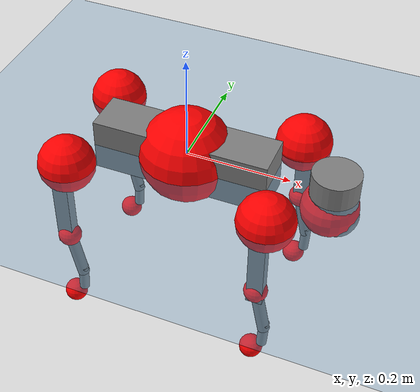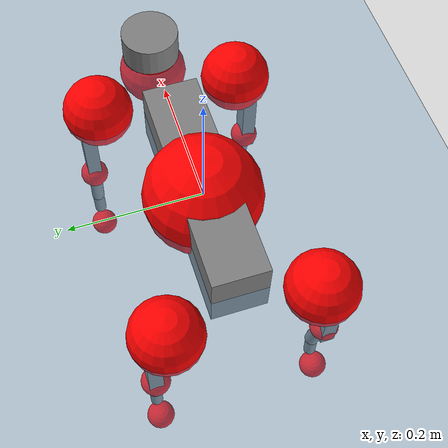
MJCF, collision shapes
<mujoco model="go2">
  <compiler angle="radian" assetdir="assets" balanceinertia="true" inertiafromgeom="false"/>

  <option timestep="0.005" density="1.2" viscosity="2e-05"/>

  <size nkey="1"/>

  <visual>
    <quality shadowsize="8192"/>
    <map shadowclip="0.5"/>
  </visual>

  <default>
    <default class="/">
      <geom contype="0" conaffinity="0" group="1" solref="-1000 -80"/>
      <site size="0.01 0.005 0.005" group="5"/>
      <general forcelimited="true" biastype="affine" gainprm="20" biasprm="0 -20 -0.5"/>
      <default class="go2">
        <joint armature="0.01" damping="0.01" frictionloss="0.2"/>
        <geom condim="1" margin="0.001"/>
        <default class="visual">
          <geom type="mesh" group="2"/>
        </default>
        <default class="collision">
          <geom group="3"/>
          <default class="foot">
            <geom size="0.022 0 0" condim="6" priority="1" friction="0.8 0.02 0.01" solimp="0.015 1 0.022"/>
          </default>
        </default>
        <default class="reward_collision_sphere">
          <geom group="5" rgba="1 0 0 1"/>
        </default>
      </default>
    </default>
  </default>

  <asset>
    <texture type="skybox" colorspace="auto" name="//unnamed_texture_0" builtin="gradient" rgb1="0.95 0.95 0.95" rgb2="0.95 0.95 0.95" width="100" height="600"/>
    <texture type="2d" colorspace="auto" name="texplane" builtin="checker" rgb1="0.345 0.575 0.748" rgb2="0.345 0.575 0.748" markrgb="1 1 1" width="512" height="512"/>
    <material name="MatPlane" class="/" texture="texplane" texuniform="true" texrepeat="2 2" specular="0.9"/>
    <material name="metal" class="/" rgba="0.9 0.95 0.95 1"/>
    <material name="black" class="/" rgba="0 0 0 1"/>
    <material name="white" class="/"/>
    <material name="gray" class="/" rgba="0.671705 0.692426 0.77427 1"/>
    <mesh name="base_0" class="/" file="base_0.obj"/>
    <mesh name="base_1" class="/" file="base_1.obj"/>
    <mesh name="base_2" class="/" file="base_2.obj"/>
    <mesh name="base_3" class="/" file="base_3.obj"/>
    <mesh name="base_4" class="/" file="base_4.obj"/>
    <mesh name="hip_0" class="/" file="hip_0.obj"/>
    <mesh name="hip_1" class="/" file="hip_1.obj"/>
    <mesh name="thigh_0" class="/" file="thigh_0.obj"/>
    <mesh name="thigh_1" class="/" file="thigh_1.obj"/>
    <mesh name="thigh_mirror_0" class="/" file="thigh_mirror_0.obj"/>
    <mesh name="thigh_mirror_1" class="/" file="thigh_mirror_1.obj"/>
    <mesh name="calf_0" class="/" file="calf_0.obj"/>
    <mesh name="calf_1" class="/" file="calf_1.obj"/>
    <mesh name="calf_mirror_0" class="/" file="calf_mirror_0.obj"/>
    <mesh name="calf_mirror_1" class="/" file="calf_mirror_1.obj"/>
    <mesh name="foot" class="/" file="foot.obj"/>
  </asset>

  <worldbody>
    <geom name="floor" class="/" size="100 100 0.125" type="plane" group="0" material="MatPlane"/>
    <light name="toplight_shadow" class="/" pos="0 0 5" dir="0.0990148 0.0990148 -0.990148" type="directional" ambient="0.04 0.04 0.04" diffuse="0.55 0.55 0.55" specular="0.12 0.12 0.12"/>
    <light name="toplight_fill" class="/" pos="0 0 5" dir="0.0990148 0.0990148 -0.990148" type="directional" castshadow="false" ambient="0.04 0.04 0.04" diffuse="0.3 0.3 0.3" specular="0.08 0.08 0.08"/>
    <body name="trunk" childclass="go2" pos="2.35689e-05 -2.20723e-05 -0.00110552" quat="1 -0.000153178 -0.000191524 -0.000280025">
      <inertial pos="0.0208322 -0.0017528 -0.00367119" quat="-0.000975589 0.713839 -0.00181455 0.700307" mass="4.97421" diaginertia="0.0963912 0.0752682 0.00577973"/>
      <joint name="//unnamed_joint_0" type="free" armature="0" damping="0" frictionloss="0"/>
      <geom name="//unnamed_geom_1" class="visual" material="black" mesh="base_0"/>
      <geom name="//unnamed_geom_2" class="visual" material="black" mesh="base_1"/>
      <geom name="//unnamed_geom_3" class="visual" material="black" mesh="base_2"/>
      <geom name="//unnamed_geom_4" class="visual" material="white" mesh="base_3"/>
      <geom name="//unnamed_geom_5" class="visual" material="gray" mesh="base_4"/>
      <geom name="trunk_1" class="collision" size="0.168879 0.0419728 0.0511753" type="box"/>
      <geom name="trunk_2" class="collision" size="0.0448907 0.0404016" pos="0.281229 0 0.00752956" type="cylinder"/>
      <geom name="trunk_3" class="collision" size="0.0421972" pos="0.289123 0 -0.0451774"/>
      <geom name="//unnamed_geom_9" class="reward_collision_sphere" size="0.0897813"/>
      <geom name="//unnamed_geom_10" class="reward_collision_sphere" size="0.0538688" pos="0.276295 0 -0.033883"/>
      <site name="imu" pos="-0.0117977 -0.0108777 0.0453194" size="0.00897813"/>
      <camera name="track" pos="0 -1.90743 0" quat="0.707107 0.707107 0 0" mode="trackcom"/>
      <camera name="ego_camera" pos="0.307872 0 0.033883" quat="-0.5 -0.5 0.5 0.5"/>
      <body name="FL_hip" pos="0.189834 0.0427123 0.0049689" quat="0.999999 0.000112866 0.000959093 -0.000265694">
        <inertial pos="-0.00485572 0.00270701 -0.00244469" quat="0.491454 0.502215 0.507721 0.498469" mass="0.460276" diaginertia="0.000797642 0.00044222 0.000115314"/>
        <joint name="FL_hip_joint" pos="0 0 0" axis="0.999982 -0.00457543 -0.00394858" stiffness="0.00148561" range="-1.10119 1.05893" armature="0.00984811" damping="0.0175505" frictionloss="0.180227"/>
        <geom name="//unnamed_geom_11" class="visual" material="metal" mesh="hip_0"/>
        <geom name="//unnamed_geom_12" class="visual" material="gray" mesh="hip_1"/>
        <geom name="//unnamed_geom_13" class="collision" size="0.0412994 0.0179563" pos="0 0.0762972 0" quat="0.707107 0.707107 0 0" type="cylinder"/>
        <geom name="//unnamed_geom_14" class="reward_collision_sphere" size="0.0538688" pos="0 0.06676 0"/>
        <body name="FL_thigh" pos="0.000724059 0.0901018 0.00301817" quat="1 3.23903e-05 -2.64312e-05 -1.82656e-05">
          <inertial pos="-0.00279537 -0.0207435 -0.0267896" quat="0.828962 0.0872032 -0.0191231 0.552133" mass="0.866807" diaginertia="0.00551595 0.00468058 0.000220944"/>
          <joint name="FL_thigh_joint" pos="0 0 0" axis="-0.00901342 0.999935 0.00705319" range="-1.60368 3.54498" armature="0.00998388" damping="0" frictionloss="0.184315"/>
          <geom name="//unnamed_geom_15" class="visual" material="metal" mesh="thigh_0"/>
          <geom name="//unnamed_geom_16" class="visual" material="gray" mesh="thigh_1"/>
          <geom name="//unnamed_geom_17" class="collision" size="0.0956171 0.0109982 0.0152628" pos="0 0 -0.0801898" quat="0.707107 0 0.707107 0" type="box"/>
          <body name="FL_calf" pos="-0.00332286 0.00101108 -0.15975" quat="1 0.00052559 -2.09113e-05 0.000450925">
            <inertial pos="0.00641369 -0.000536083 -0.105542" quat="0.710735 0.00131851 -0.0043008 0.703445" mass="0.167066" diaginertia="0.00139081 0.00117888 1.27289e-05"/>
            <joint name="FL_calf_joint" pos="0 0 0" axis="3.64027e-05 1 -6.53297e-06" stiffness="0.00363663" range="-2.70848 -0.86949" armature="0.00787261" damping="0.00656959" frictionloss="0.169861"/>
            <geom name="//unnamed_geom_18" class="visual" material="gray" mesh="calf_0"/>
            <geom name="//unnamed_geom_19" class="visual" material="black" mesh="calf_1"/>
            <geom name="FL_calf0" class="collision" size="0.0107738 0.0538688" pos="0.00789415 0 -0.0451774" quat="0.994493 0 -0.104807 0" type="cylinder"/>
            <geom name="//unnamed_geom_21" class="collision" size="0.00987594 0.0291789" pos="0.0197354 0 -0.111437" quat="0.999688 0 0.0249974 0" type="cylinder"/>
            <geom name="//unnamed_geom_22" class="visual" pos="0 0 -0.16038" quat="1 0 0 0" material="black" mesh="foot"/>
            <geom name="FL_foot" class="foot" size="0.0171984" pos="-0.00197354 0 -0.16038"/>
            <geom name="//unnamed_geom_24" class="reward_collision_sphere" size="0.0224453"/>
            <geom name="//unnamed_geom_25" class="reward_collision_sphere" size="0.0224453" pos="-0.00197354 0 -0.16038"/>
            <site name="FL_foot" class="foot" pos="-0.00197354 0 -0.16038" size="0.00897813"/>
          </body>
        </body>
      </body>
      <body name="FR_hip" pos="0.194505 -0.0466812 0.00152845" quat="1 4.21213e-05 0.000222633 -5.29655e-05">
        <inertial pos="-0.00548174 -0.00132388 -0.00221165" quat="0.498673 0.507263 0.499512 0.494467" mass="0.512191" diaginertia="0.000835879 0.000461003 0.000116005"/>
        <joint name="FR_hip_joint" pos="0 0 0" axis="0.999999 0.000333611 -0.00163487" stiffness="0.0114901" range="-1.03955 1.0741" armature="0.0093819" damping="0.0235736" frictionloss="0.164772"/>
        <geom name="//unnamed_geom_26" class="visual" pos="0 1.74893e-09 7.50151e-08" quat="4.63268e-05 1 0 0" material="metal" mesh="hip_0"/>
        <geom name="//unnamed_geom_27" class="visual" pos="0 2.83522e-09 -1.85541e-07" quat="4.63268e-05 1 0 0" material="gray" mesh="hip_1"/>
        <geom name="//unnamed_geom_28" class="collision" size="0.0412994 0.0179563" pos="0 -0.0762972 0" quat="0.707107 0.707107 0 0" type="cylinder"/>
        <geom name="//unnamed_geom_29" class="reward_collision_sphere" size="0.0538688" pos="0 -0.06676 0"/>
        <body name="FR_thigh" pos="-0.00226972 -0.0896798 0.00226317" quat="0.999999 -0.000885735 0.000838281 0.000639347">
          <inertial pos="-0.00408807 0.0199986 -0.0246999" quat="0.55118 -0.0177135 0.0847718 0.82988" mass="0.781651" diaginertia="0.0054665 0.00431006 0.000210556"/>
          <joint name="FR_thigh_joint" pos="0 0 0" axis="0.00436327 -0.999916 0.0122197" stiffness="0.00295521" range="-3.54801 1.59596" armature="0.00856422" damping="0.00555581" frictionloss="0.159568"/>
          <geom name="//unnamed_geom_30" class="visual" material="metal" mesh="thigh_mirror_0"/>
          <geom name="//unnamed_geom_31" class="visual" material="gray" mesh="thigh_mirror_1"/>
          <geom name="//unnamed_geom_32" class="collision" size="0.0956171 0.0109982 0.0152628" pos="0 0 -0.0801898" quat="0.707107 0 0.707107 0" type="box"/>
          <body name="FR_calf" pos="-0.00144303 0.00280598 -0.157888" quat="0.999999 -9.92103e-05 0.000300364 -0.000962821">
            <inertial pos="0.00371881 -0.00163391 -0.108794" quat="0.706312 0.00754005 0.00371655 0.707851" mass="0.180706" diaginertia="0.00142144 0.00116126 1.29363e-05"/>
            <joint name="FR_calf_joint" pos="0 0 0" axis="-0.00508949 -0.999815 0.0185299" range="0.887724 2.72198" armature="0.00905973" damping="0.0106024" frictionloss="0.205305"/>
            <geom name="//unnamed_geom_33" class="visual" material="gray" mesh="calf_mirror_0"/>
            <geom name="//unnamed_geom_34" class="visual" material="black" mesh="calf_mirror_1"/>
            <geom name="FR_calf0" class="collision" size="0.0116716 0.0538688" pos="0.00986769 0 -0.0451774" quat="0.995004 0 -0.0998334 0" type="cylinder"/>
            <geom name="//unnamed_geom_36" class="collision" size="0.00987594 0.0291789" pos="0.0197354 0 -0.111437" quat="0.999688 0 0.0249974 0" type="cylinder"/>
            <geom name="//unnamed_geom_37" class="visual" pos="0 0 -0.16038" quat="1 0 0 0" material="black" mesh="foot"/>
            <geom name="FR_foot" class="foot" size="0.0217153" pos="-0.00197354 0 -0.16038"/>
            <geom name="//unnamed_geom_39" class="reward_collision_sphere" size="0.0224453"/>
            <geom name="//unnamed_geom_40" class="reward_collision_sphere" size="0.0224453" pos="-0.00197354 0 -0.16038"/>
            <site name="FR_foot" class="foot" pos="-0.00197354 0 -0.16038" size="0.00897813"/>
          </body>
        </body>
      </body>
      <body name="RL_hip" pos="-0.193369 0.0450022 -0.000375874" quat="1 0.000347485 0.000627957 0.000601852">
        <inertial pos="0.00289655 0.00220905 0.00200466" quat="0.506909 0.492914 0.487605 0.512172" mass="0.510427" diaginertia="0.000855952 0.000479989 0.000112567"/>
        <joint name="RL_hip_joint" pos="0 0 0" axis="-0.999962 -0.00273462 -0.00824868" range="-1.0022 0.998384" armature="0.00915793" damping="0.000506791" frictionloss="0.20055"/>
        <geom name="//unnamed_geom_41" class="visual" pos="-2.03688e-09 0 -3.99276e-07" quat="4.63268e-05 0 1 0" material="metal" mesh="hip_0"/>
        <geom name="//unnamed_geom_42" class="visual" pos="-3.30203e-09 0 -3.54101e-07" quat="4.63268e-05 0 1 0" material="gray" mesh="hip_1"/>
        <geom name="//unnamed_geom_43" class="collision" size="0.0412994 0.0179563" pos="0 0.0762972 0" quat="0.707107 0.707107 0 0" type="cylinder"/>
        <geom name="//unnamed_geom_44" class="reward_collision_sphere" size="0.0538688" pos="0 0.06676 0"/>
        <body name="RL_thigh" pos="-0.000413414 0.0909106 -5.14886e-05" quat="0.999999 -0.000255109 -0.00111979 0.00022707">
          <inertial pos="-0.00622442 -0.0223445 -0.0247229" quat="0.825469 0.0776304 -0.0124017 0.558947" mass="0.817198" diaginertia="0.00534908 0.00440761 0.000215348"/>
          <joint name="RL_thigh_joint" pos="0 0 0" axis="0.0136959 0.999876 0.00776197" stiffness="0.010844" range="-0.531966 4.5437" armature="0.00905867" damping="0" frictionloss="0.183692"/>
          <geom name="//unnamed_geom_45" class="visual" material="metal" mesh="thigh_0"/>
          <geom name="//unnamed_geom_46" class="visual" material="gray" mesh="thigh_1"/>
          <geom name="//unnamed_geom_47" class="collision" size="0.0956171 0.0109982 0.0152628" pos="0 0 -0.0801898" quat="0.707107 0 0.707107 0" type="box"/>
          <body name="RL_calf" pos="0.000464219 -0.00154581 -0.160224" quat="1 7.68299e-05 3.01839e-05 -1.71073e-06">
            <inertial pos="0.00675785 -0.00300512 -0.107709" quat="0.710616 0.000749838 -0.00509709 0.703561" mass="0.16872" diaginertia="0.00129103 0.00109082 1.18033e-05"/>
            <joint name="RL_calf_joint" pos="0 0 0" axis="-0.00478157 0.999989 0.000253139" stiffness="0.000873909" range="-2.73344 -0.767965" armature="0.00905541" damping="0.00858318" frictionloss="0.201651"/>
            <geom name="//unnamed_geom_48" class="visual" material="gray" mesh="calf_0"/>
            <geom name="//unnamed_geom_49" class="visual" material="black" mesh="calf_1"/>
            <geom name="RL_calf0" class="collision" size="0.0116716 0.0538688" pos="0.00986769 0 -0.0451774" quat="0.995004 0 -0.0998334 0" type="cylinder"/>
            <geom name="//unnamed_geom_51" class="collision" size="0.00987594 0.0291789" pos="0.0197354 0 -0.111437" quat="0.999688 0 0.0249974 0" type="cylinder"/>
            <geom name="//unnamed_geom_52" class="visual" pos="0 0 -0.16038" quat="1 0 0 0" material="black" mesh="foot"/>
            <geom name="RL_foot" class="foot" size="0.0203166" pos="-0.00197354 0 -0.16038"/>
            <geom name="//unnamed_geom_54" class="reward_collision_sphere" size="0.0224453"/>
            <geom name="//unnamed_geom_55" class="reward_collision_sphere" size="0.0224453" pos="-0.00197354 0 -0.16038"/>
            <site name="RL_foot" class="foot" pos="-0.00197354 0 -0.16038" size="0.00897813"/>
          </body>
        </body>
      </body>
      <body name="RR_hip" pos="-0.190502 -0.0433437 0.00124877" quat="1 0.000217794 -0.000235983 -8.01844e-05">
        <inertial pos="0.00737337 0.000816505 -0.00261288" quat="0.491035 0.491768 0.502177 0.514653" mass="0.466211" diaginertia="0.000828969 0.00044727 0.000113268"/>
        <joint name="RR_hip_joint" pos="0 0 0" axis="-0.999828 0.0178 0.00523227" range="-1.04267 1.09237" armature="0.00928378" damping="0.00529795" frictionloss="0.195241"/>
        <geom name="//unnamed_geom_56" class="visual" pos="2.03574e-09 1.74893e-09 -4.74291e-07" quat="2.14617e-09 4.63268e-05 4.63268e-05 -1" material="metal" mesh="hip_0"/>
        <geom name="//unnamed_geom_57" class="visual" pos="3.30486e-09 2.83522e-09 -1.6856e-07" quat="2.14617e-09 4.63268e-05 4.63268e-05 -1" material="gray" mesh="hip_1"/>
        <geom name="//unnamed_geom_58" class="collision" size="0.0412994 0.0179563" pos="0 -0.0762972 0" quat="0.707107 0.707107 0 0" type="cylinder"/>
        <geom name="//unnamed_geom_59" class="reward_collision_sphere" size="0.0538688" pos="0 -0.06676 0"/>
        <body name="RR_thigh" pos="-0.00053982 -0.0908342 0.0021435" quat="1 5.25222e-05 0.000484035 0.000260366">
          <inertial pos="-0.00323893 0.0182535 -0.0225378" quat="0.551532 -0.0192801 0.0867163 0.82941" mass="0.86486" diaginertia="0.00579269 0.0048352 0.00021931"/>
          <joint name="RR_thigh_joint" pos="0 0 0" axis="0.00454512 -0.999981 -0.0042412" range="-4.48478 0.550442" armature="0.00756857" damping="0.0187907" frictionloss="0.203199"/>
          <geom name="//unnamed_geom_60" class="visual" material="metal" mesh="thigh_mirror_0"/>
          <geom name="//unnamed_geom_61" class="visual" material="gray" mesh="thigh_mirror_1"/>
          <geom name="//unnamed_geom_62" class="collision" size="0.0956171 0.0109982 0.0152628" pos="0 0 -0.0801898" quat="0.707107 0 0.707107 0" type="box"/>
          <body name="RR_calf" pos="0.00374973 -0.000346445 -0.16026" quat="1 -9.86676e-06 0.000151757 -0.000436021">
            <inertial pos="0.00854176 0.00146957 -0.105653" quat="0.708028 -0.00369551 0.00899662 0.706117" mass="0.17163" diaginertia="0.00138443 0.00108375 1.1998e-05"/>
            <joint name="RR_calf_joint" pos="0 0 0" axis="0.000570924 -0.999985 -0.00553662" range="0.842157 2.70844" armature="0.00915227" damping="0.0127809" frictionloss="0.191623"/>
            <geom name="//unnamed_geom_63" class="visual" material="gray" mesh="calf_mirror_0"/>
            <geom name="//unnamed_geom_64" class="visual" material="black" mesh="calf_mirror_1"/>
            <geom name="RR_calf0" class="collision" size="0.0116716 0.0538688" pos="0.00986769 0 -0.0451774" quat="0.995004 0 -0.0998334 0" type="cylinder"/>
            <geom name="//unnamed_geom_66" class="collision" size="0.00987594 0.0291789" pos="0.0197354 0 -0.111437" quat="0.999688 0 0.0249974 0" type="cylinder"/>
            <geom name="//unnamed_geom_67" class="visual" pos="0 0 -0.16038" quat="1 0 0 0" material="black" mesh="foot"/>
            <geom name="RR_foot" class="foot" size="0.0216837" pos="-0.00197354 0 -0.16038"/>
            <geom name="//unnamed_geom_69" class="reward_collision_sphere" size="0.0224453"/>
            <geom name="//unnamed_geom_70" class="reward_collision_sphere" size="0.0224453" pos="-0.00197354 0 -0.16038"/>
            <site name="RR_foot" class="foot" pos="-0.00197354 0 -0.16038" size="0.00897813"/>
          </body>
        </body>
      </body>
    </body>
  </worldbody>

  <contact>
    <pair class="/" geom1="floor" geom2="FL_foot" name="//unnamed_contact_0"/>
    <pair class="/" geom1="floor" geom2="FR_foot" name="//unnamed_contact_1"/>
    <pair class="/" geom1="floor" geom2="RL_foot" name="//unnamed_contact_2"/>
    <pair class="/" geom1="floor" geom2="RR_foot" name="//unnamed_contact_3"/>
  </contact>

  <actuator>
    <general name="FL_hip" class="/" joint="FL_hip_joint" forcerange="-19.6079 19.6079" gainprm="17.3028" biasprm="0 -17.3028 -0.479823"/>
    <general name="FL_thigh" class="/" joint="FL_thigh_joint" forcerange="-23.5217 23.5217" gainprm="17.3028" biasprm="0 -17.3028 -0.479823"/>
    <general name="FL_calf" class="/" joint="FL_calf_joint" forcerange="-44.4545 44.4545" gainprm="17.3028" biasprm="0 -17.3028 -0.479823"/>
    <general name="FR_hip" class="/" joint="FR_hip_joint" forcerange="-19.232 19.232" gainprm="17.3028" biasprm="0 -17.3028 -0.479823"/>
    <general name="FR_thigh" class="/" joint="FR_thigh_joint" forcerange="-23.43 23.43" gainprm="17.3028" biasprm="0 -17.3028 -0.479823"/>
    <general name="FR_calf" class="/" joint="FR_calf_joint" forcerange="-36.6744 36.6744" gainprm="17.3028" biasprm="0 -17.3028 -0.479823"/>
    <general name="RL_hip" class="/" joint="RL_hip_joint" forcerange="-22.4215 22.4215" gainprm="17.3028" biasprm="0 -17.3028 -0.479823"/>
    <general name="RL_thigh" class="/" joint="RL_thigh_joint" forcerange="-21.334 21.334" gainprm="17.3028" biasprm="0 -17.3028 -0.479823"/>
    <general name="RL_calf" class="/" joint="RL_calf_joint" forcerange="-37.1826 37.1826" gainprm="17.3028" biasprm="0 -17.3028 -0.479823"/>
    <general name="RR_hip" class="/" joint="RR_hip_joint" forcerange="-23.3426 23.3426" gainprm="17.3028" biasprm="0 -17.3028 -0.479823"/>
    <general name="RR_thigh" class="/" joint="RR_thigh_joint" forcerange="-19.8933 19.8933" gainprm="17.3028" biasprm="0 -17.3028 -0.479823"/>
    <general name="RR_calf" class="/" joint="RR_calf_joint" forcerange="-38.2883 38.2883" gainprm="17.3028" biasprm="0 -17.3028 -0.479823"/>
  </actuator>

  <sensor>
    <gyro site="imu" name="imu_angular_velocity"/>
    <velocimeter site="imu" name="imu_linear_velocity"/>
    <framelinvel objtype="site" objname="FL_foot" name="FL_foot_global_linear_velocity"/>
    <framelinvel objtype="site" objname="FR_foot" name="FR_foot_global_linear_velocity"/>
    <framelinvel objtype="site" objname="RL_foot" name="RL_foot_global_linear_velocity"/>
    <framelinvel objtype="site" objname="RR_foot" name="RR_foot_global_linear_velocity"/>
  </sensor>

  <keyframe>
    <key name="home" qpos="0 0 0.325 1 0 0 0 0.1 0.8 -1.5 -0.1 -0.8 1.5 -0.1 0.8 -1.5 0.1 -0.8 1.5"/>
  </keyframe>
</mujoco>
